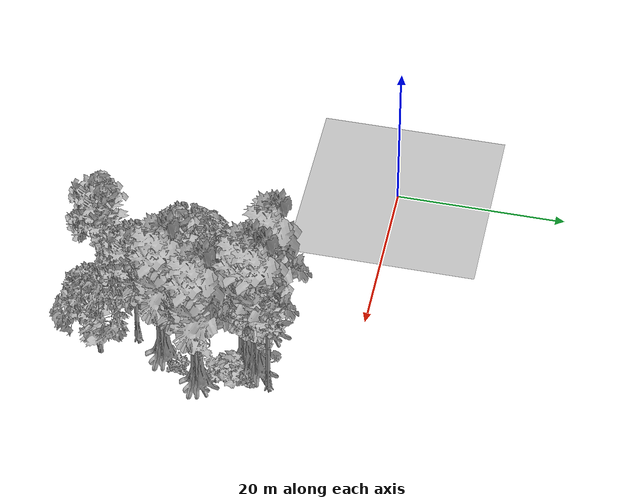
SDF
<sdf version="1.7">
 <world name="default">
  <model name="ground_plane">
   <static>1</static>
   <link name="link">
    <collision name="collision">
     <geometry><plane><normal>0 0 1</normal><size>100 100</size></plane></geometry>
     <surface><contact><ode><min_depth>0.01</min_depth><max_vel>0</max_vel></ode></contact></surface>
    </collision>
    <visual name="grass">
     <cast_shadows>0</cast_shadows>
     <geometry>
      <mesh>
       <scale>0.41000000000000003 0.41000000000000003 0.1</scale>
       <uri>file://grass_plane/meshes/grass_plane.dae</uri>
      </mesh>
     </geometry>
    </visual>
   </link>
  </model>
  <model name="Tree 35">
   <static>1</static>
   <pose>31.24420139409291 -8.705503871518374 0 1.57079 -0 0</pose>
   <link name="link">
    <collision name="collision">
     <geometry><mesh><scale>5 5 5</scale><uri>model://tree_9/meshes/tree_9.obj</uri></mesh></geometry>
    </collision>
    <visual name="visual">
     <geometry><mesh><scale>5 5 5</scale><uri>model://tree_9/meshes/tree_9.obj</uri></mesh></geometry>
    </visual>
   </link>
  </model>
  <model name="Tree 52">
   <static>1</static>
   <pose>19.20649136220615 -20.447518289749844 0 1.57079 -0 0</pose>
   <link name="link">
    <collision name="collision">
     <geometry><mesh><scale>5 5 5</scale><uri>model://tree_2/meshes/tree_2.obj</uri></mesh></geometry>
    </collision>
    <visual name="visual">
     <geometry><mesh><scale>5 5 5</scale><uri>model://tree_2/meshes/tree_2.obj</uri></mesh></geometry>
    </visual>
   </link>
  </model>
  <model name="Tree 78">
   <static>1</static>
   <pose>26.89756589960041 -9.751024627171859 0 1.57079 -0 0</pose>
   <link name="link">
    <collision name="collision">
     <geometry><mesh><scale>5 5 5</scale><uri>model://tree_9/meshes/tree_9.obj</uri></mesh></geometry>
    </collision>
    <visual name="visual">
     <geometry><mesh><scale>5 5 5</scale><uri>model://tree_9/meshes/tree_9.obj</uri></mesh></geometry>
    </visual>
   </link>
  </model>
  <model name="Tree 96">
   <static>1</static>
   <pose>22.931406059798277 -24.890056607040968 0 1.57079 -0 0</pose>
   <link name="link">
    <collision name="collision">
     <geometry><mesh><scale>5 5 5</scale><uri>model://tree_2/meshes/tree_2.obj</uri></mesh></geometry>
    </collision>
    <visual name="visual">
     <geometry><mesh><scale>5 5 5</scale><uri>model://tree_2/meshes/tree_2.obj</uri></mesh></geometry>
    </visual>
   </link>
  </model>
  <model name="Tree 152">
   <static>1</static>
   <pose>22.84345310221603 -19.085297486134156 0 1.57079 -0 0</pose>
   <link name="link">
    <collision name="collision">
     <geometry><mesh><scale>5 5 5</scale><uri>model://tree_2/meshes/tree_2.obj</uri></mesh></geometry>
    </collision>
    <visual name="visual">
     <geometry><mesh><scale>5 5 5</scale><uri>model://tree_2/meshes/tree_2.obj</uri></mesh></geometry>
    </visual>
   </link>
  </model>
  <model name="Tree 180">
   <static>1</static>
   <pose>29.816449414528634 -10.222656013615108 0 1.57079 -0 0</pose>
   <link name="link">
    <collision name="collision">
     <geometry><mesh><scale>5 5 5</scale><uri>model://tree_4/meshes/tree_4.obj</uri></mesh></geometry>
    </collision>
    <visual name="visual">
     <geometry><mesh><scale>5 5 5</scale><uri>model://tree_4/meshes/tree_4.obj</uri></mesh></geometry>
    </visual>
   </link>
  </model>
  <model name="Tree 244">
   <static>1</static>
   <pose>29.037342486110518 -11.787017185143576 0 1.57079 -0 0</pose>
   <link name="link">
    <collision name="collision">
     <geometry><mesh><scale>5 5 5</scale><uri>model://tree_4/meshes/tree_4.obj</uri></mesh></geometry>
    </collision>
    <visual name="visual">
     <geometry><mesh><scale>5 5 5</scale><uri>model://tree_4/meshes/tree_4.obj</uri></mesh></geometry>
    </visual>
   </link>
  </model>
  <model name="Tree 285">
   <static>1</static>
   <pose>20.309955610594187 -30.68000012818054 0 1.57079 -0 0</pose>
   <link name="link">
    <collision name="collision">
     <geometry><mesh><scale>5 5 5</scale><uri>model://tree_9/meshes/tree_9.obj</uri></mesh></geometry>
    </collision>
    <visual name="visual">
     <geometry><mesh><scale>5 5 5</scale><uri>model://tree_9/meshes/tree_9.obj</uri></mesh></geometry>
    </visual>
   </link>
  </model>
  <model name="Tree 301">
   <static>1</static>
   <pose>30.299191199668442 -28.28528094351237 0 1.57079 -0 0</pose>
   <link name="link">
    <collision name="collision">
     <geometry><mesh><scale>5 5 5</scale><uri>model://tree_2/meshes/tree_2.obj</uri></mesh></geometry>
    </collision>
    <visual name="visual">
     <geometry><mesh><scale>5 5 5</scale><uri>model://tree_2/meshes/tree_2.obj</uri></mesh></geometry>
    </visual>
   </link>
  </model>
  <model name="Tree 302">
   <static>1</static>
   <pose>27.38657744488623 -24.702330249919726 0 1.57079 -0 0</pose>
   <link name="link">
    <collision name="collision">
     <geometry><mesh><scale>5 5 5</scale><uri>model://tree_9/meshes/tree_9.obj</uri></mesh></geometry>
    </collision>
    <visual name="visual">
     <geometry><mesh><scale>5 5 5</scale><uri>model://tree_9/meshes/tree_9.obj</uri></mesh></geometry>
    </visual>
   </link>
  </model>
  <model name="Tree 319">
   <static>1</static>
   <pose>24.110428160682673 -10.0213274731097 0 1.57079 -0 0</pose>
   <link name="link">
    <collision name="collision">
     <geometry><mesh><scale>5 5 5</scale><uri>model://tree_4/meshes/tree_4.obj</uri></mesh></geometry>
    </collision>
    <visual name="visual">
     <geometry><mesh><scale>5 5 5</scale><uri>model://tree_4/meshes/tree_4.obj</uri></mesh></geometry>
    </visual>
   </link>
  </model>
  <model name="Tree 327">
   <static>1</static>
   <pose>23.201112177487516 -25.542676484218262 0 1.57079 -0 0</pose>
   <link name="link">
    <collision name="collision">
     <geometry><mesh><scale>5 5 5</scale><uri>model://tree_2/meshes/tree_2.obj</uri></mesh></geometry>
    </collision>
    <visual name="visual">
     <geometry><mesh><scale>5 5 5</scale><uri>model://tree_2/meshes/tree_2.obj</uri></mesh></geometry>
    </visual>
   </link>
  </model>
  <model name="Tree 335">
   <static>1</static>
   <pose>21.733855571961243 -29.65472800646055 0 1.57079 -0 0</pose>
   <link name="link">
    <collision name="collision">
     <geometry><mesh><scale>5 5 5</scale><uri>model://tree_9/meshes/tree_9.obj</uri></mesh></geometry>
    </collision>
    <visual name="visual">
     <geometry><mesh><scale>5 5 5</scale><uri>model://tree_9/meshes/tree_9.obj</uri></mesh></geometry>
    </visual>
   </link>
  </model>
  <model name="Tree 342">
   <static>1</static>
   <pose>32.83230200395863 -16.333218965376126 0 1.57079 -0 0</pose>
   <link name="link">
    <collision name="collision">
     <geometry><mesh><scale>5 5 5</scale><uri>model://tree_4/meshes/tree_4.obj</uri></mesh></geometry>
    </collision>
    <visual name="visual">
     <geometry><mesh><scale>5 5 5</scale><uri>model://tree_4/meshes/tree_4.obj</uri></mesh></geometry>
    </visual>
   </link>
  </model>
  <model name="Tree 396">
   <static>1</static>
   <pose>23.70705856776776 -20.91643154475363 0 1.57079 -0 0</pose>
   <link name="link">
    <collision name="collision">
     <geometry><mesh><scale>5 5 5</scale><uri>model://tree_9/meshes/tree_9.obj</uri></mesh></geometry>
    </collision>
    <visual name="visual">
     <geometry><mesh><scale>5 5 5</scale><uri>model://tree_9/meshes/tree_9.obj</uri></mesh></geometry>
    </visual>
   </link>
  </model>
  <model name="Tree 414">
   <static>1</static>
   <pose>21.73477724954408 -15.23190839268048 0 1.57079 -0 0</pose>
   <link name="link">
    <collision name="collision">
     <geometry><mesh><scale>5 5 5</scale><uri>model://tree_2/meshes/tree_2.obj</uri></mesh></geometry>
    </collision>
    <visual name="visual">
     <geometry><mesh><scale>5 5 5</scale><uri>model://tree_2/meshes/tree_2.obj</uri></mesh></geometry>
    </visual>
   </link>
  </model>
  <model name="Tree 450">
   <static>1</static>
   <pose>29.697528010995228 -21.050527342067827 0 1.57079 -0 0</pose>
   <link name="link">
    <collision name="collision">
     <geometry><mesh><scale>5 5 5</scale><uri>model://tree_4/meshes/tree_4.obj</uri></mesh></geometry>
    </collision>
    <visual name="visual">
     <geometry><mesh><scale>5 5 5</scale><uri>model://tree_4/meshes/tree_4.obj</uri></mesh></geometry>
    </visual>
   </link>
  </model>
  <model name="Bush 22">
   <static>1</static>
   <pose>30.56844481038786 -19.194965146364474 0 1.57079 -0 0</pose>
   <link name="link">
    <collision name="collision">
     <geometry><mesh><scale>2 2 2</scale><uri>model://bush_2/meshes/bush_2.obj</uri></mesh></geometry>
    </collision>
    <visual name="visual">
     <geometry><mesh><scale>5 5 5</scale><uri>model://bush_2/meshes/bush_2.obj</uri></mesh></geometry>
    </visual>
   </link>
  </model>
  <model name="Bush 41">
   <static>1</static>
   <pose>30.800468932202108 -11.480895053155784 0 1.57079 -0 0</pose>
   <link name="link">
    <collision name="collision">
     <geometry><mesh><scale>2 2 2</scale><uri>model://bush_2/meshes/bush_2.obj</uri></mesh></geometry>
    </collision>
    <visual name="visual">
     <geometry><mesh><scale>5 5 5</scale><uri>model://bush_2/meshes/bush_2.obj</uri></mesh></geometry>
    </visual>
   </link>
  </model>
  <model name="Bush 75">
   <static>1</static>
   <pose>19.10719238017964 -28.293783496659398 0 1.57079 -0 0</pose>
   <link name="link">
    <collision name="collision">
     <geometry><mesh><scale>2 2 2</scale><uri>model://bush_2/meshes/bush_2.obj</uri></mesh></geometry>
    </collision>
    <visual name="visual">
     <geometry><mesh><scale>5 5 5</scale><uri>model://bush_2/meshes/bush_2.obj</uri></mesh></geometry>
    </visual>
   </link>
  </model>
  <model name="Bush 90">
   <static>1</static>
   <pose>31.758433697495576 -13.658688998979486 0 1.57079 -0 0</pose>
   <link name="link">
    <collision name="collision">
     <geometry><mesh><scale>2 2 2</scale><uri>model://bush_1/meshes/bush_1.obj</uri></mesh></geometry>
    </collision>
    <visual name="visual">
     <geometry><mesh><scale>5 5 5</scale><uri>model://bush_1/meshes/bush_1.obj</uri></mesh></geometry>
    </visual>
   </link>
  </model>
  <model name="Bush 115">
   <static>1</static>
   <pose>30.957899614863507 -15.791900980342099 0 1.57079 -0 0</pose>
   <link name="link">
    <collision name="collision">
     <geometry><mesh><scale>2 2 2</scale><uri>model://bush_2/meshes/bush_2.obj</uri></mesh></geometry>
    </collision>
    <visual name="visual">
     <geometry><mesh><scale>5 5 5</scale><uri>model://bush_2/meshes/bush_2.obj</uri></mesh></geometry>
    </visual>
   </link>
  </model>
 </world>
</sdf>
